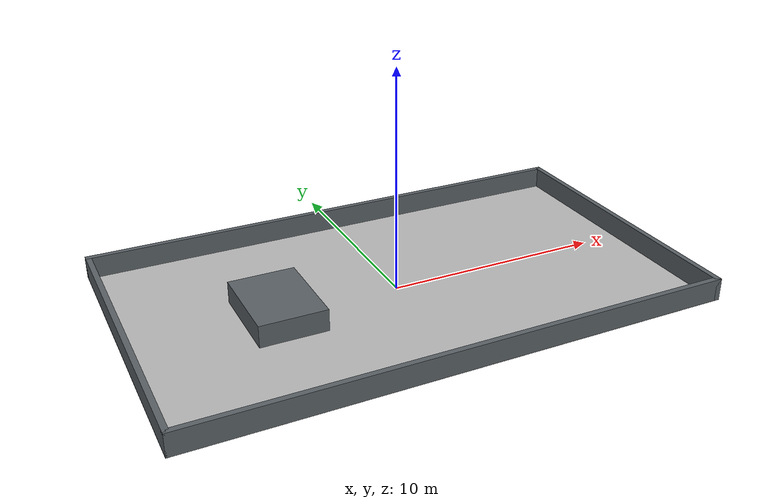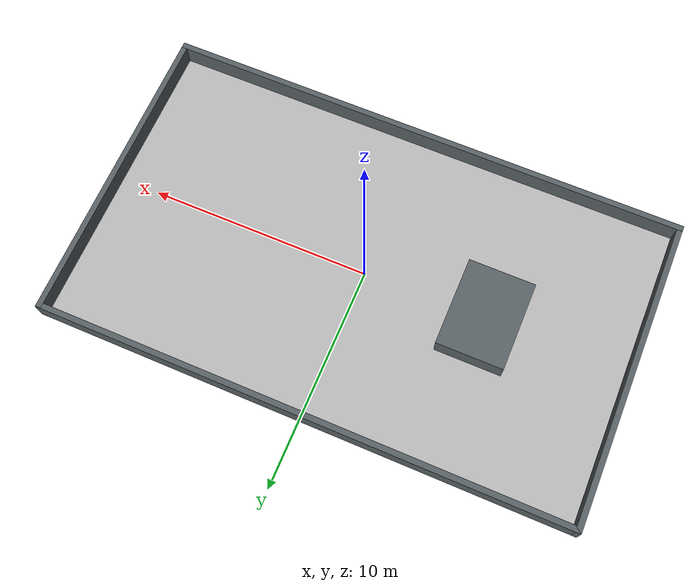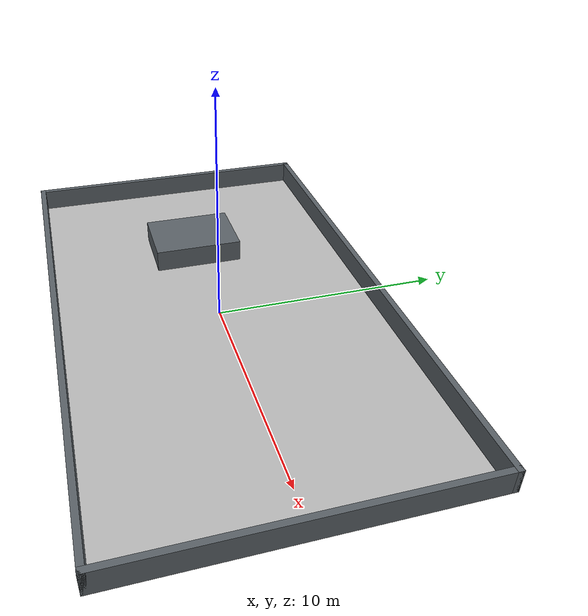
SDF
<?xml version="1.0"?>
<sdf version="1.6">
  <world name="default">
    <gravity>0 0 -9.8</gravity>
    <physics name="default_physics" type="ode">
      <max_step_size>0.002</max_step_size>
      <real_time_factor>1</real_time_factor>
      <real_time_update_rate>500</real_time_update_rate>
    </physics>
    <include><uri>model://sun</uri></include>
    <model name="ground_plane">
      <static>true</static>
      <link name="link">
        <collision name="collision">
          <geometry><box><size>24.000 14.000 0.02</size></box></geometry>
        </collision>
        <visual name="visual">
          <geometry><box><size>24.000 14.000 0.02</size></box></geometry>
          <material>
            <ambient>0.72 0.72 0.72 1</ambient>
            <diffuse>0.72 0.72 0.72 1</diffuse>
          </material>
        </visual>
      </link>
    </model>

    <model name="wall_north">
      <static>true</static>
      <pose>0.000 6.875 0.500 0 0 0</pose>
      <link name="link">
        <collision name="collision">
          <geometry><box><size>24.000 0.250 1.000</size></box></geometry>
        </collision>
        <visual name="visual">
          <geometry><box><size>24.000 0.250 1.000</size></box></geometry>
          <material>
            <ambient>0.35 0.38 0.40 1</ambient>
            <diffuse>0.35 0.38 0.40 1</diffuse>
          </material>
        </visual>
      </link>
    </model>

    <model name="wall_south">
      <static>true</static>
      <pose>0.000 -6.875 0.500 0 0 0</pose>
      <link name="link">
        <collision name="collision">
          <geometry><box><size>24.000 0.250 1.000</size></box></geometry>
        </collision>
        <visual name="visual">
          <geometry><box><size>24.000 0.250 1.000</size></box></geometry>
          <material>
            <ambient>0.35 0.38 0.40 1</ambient>
            <diffuse>0.35 0.38 0.40 1</diffuse>
          </material>
        </visual>
      </link>
    </model>

    <model name="wall_west">
      <static>true</static>
      <pose>-11.875 0.000 0.500 0 0 0</pose>
      <link name="link">
        <collision name="collision">
          <geometry><box><size>0.250 14.000 1.000</size></box></geometry>
        </collision>
        <visual name="visual">
          <geometry><box><size>0.250 14.000 1.000</size></box></geometry>
          <material>
            <ambient>0.35 0.38 0.40 1</ambient>
            <diffuse>0.35 0.38 0.40 1</diffuse>
          </material>
        </visual>
      </link>
    </model>

    <model name="wall_east">
      <static>true</static>
      <pose>11.875 0.000 0.500 0 0 0</pose>
      <link name="link">
        <collision name="collision">
          <geometry><box><size>0.250 14.000 1.000</size></box></geometry>
        </collision>
        <visual name="visual">
          <geometry><box><size>0.250 14.000 1.000</size></box></geometry>
          <material>
            <ambient>0.35 0.38 0.40 1</ambient>
            <diffuse>0.35 0.38 0.40 1</diffuse>
          </material>
        </visual>
      </link>
    </model>

    <model name="detour_entry_block">
      <static>true</static>
      <pose>-5.500 0.000 0.500 0 0 0</pose>
      <link name="link">
        <collision name="collision">
          <geometry><box><size>3.000 4.000 1.000</size></box></geometry>
        </collision>
        <visual name="visual">
          <geometry><box><size>3.000 4.000 1.000</size></box></geometry>
          <material>
            <ambient>0.35 0.38 0.40 1</ambient>
            <diffuse>0.35 0.38 0.40 1</diffuse>
          </material>
        </visual>
      </link>
    </model>
  </world>
</sdf>
